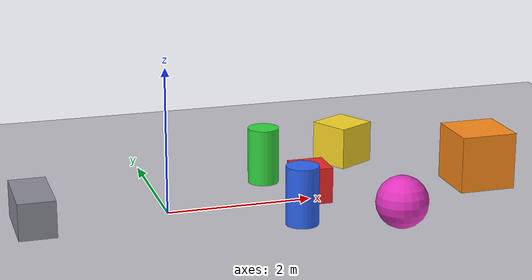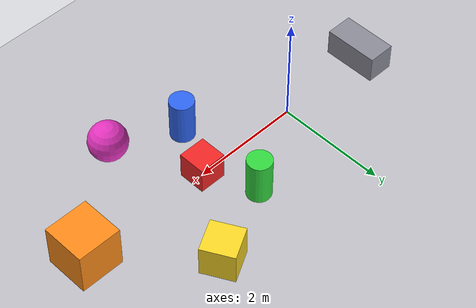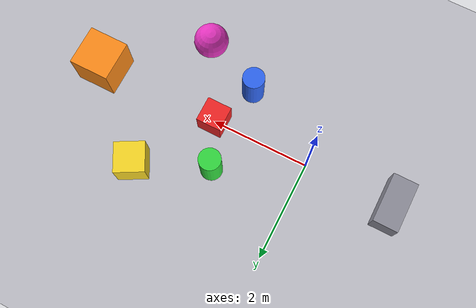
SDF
<?xml version="1.0"?>
<sdf version="1.10">
  <world name="camera_world">

    <physics name="1ms" type="ignored">
      <max_step_size>0.001</max_step_size>
      <real_time_factor>0.0</real_time_factor>
    </physics>

    <plugin filename="gz-sim-physics-system"
            name="gz::sim::systems::Physics"/>
    <plugin filename="gz-sim-user-commands-system"
            name="gz::sim::systems::UserCommands"/>
    <plugin filename="gz-sim-scene-broadcaster-system"
            name="gz::sim::systems::SceneBroadcaster"/>
    <!-- The Sensors system is what makes the camera (and lidar) actually fire -->
    <plugin filename="gz-sim-sensors-system"
            name="gz::sim::systems::Sensors">
      <render_engine>ogre2</render_engine>
    </plugin>

    <light type="directional" name="sun">
      <cast_shadows>true</cast_shadows>
      <pose>0 0 10 0 0 0</pose>
      <diffuse>0.95 0.95 0.95 1</diffuse>
      <specular>0.25 0.25 0.25 1</specular>
      <attenuation>
        <range>1000</range>
        <constant>0.9</constant>
        <linear>0.01</linear>
        <quadratic>0.001</quadratic>
      </attenuation>
      <direction>-0.5 0.1 -0.9</direction>
    </light>

    <!-- Ground plane -->
    <model name="ground_plane">
      <static>true</static>
      <link name="link">
        <collision name="collision">
          <geometry>
            <plane>
              <normal>0 0 1</normal>
              <size>100 100</size>
            </plane>
          </geometry>
        </collision>
        <visual name="visual">
          <geometry>
            <plane>
              <normal>0 0 1</normal>
              <size>100 100</size>
            </plane>
          </geometry>
          <material>
            <ambient>0.75 0.75 0.78 1</ambient>
            <diffuse>0.75 0.75 0.78 1</diffuse>
          </material>
        </visual>
      </link>
    </model>

    <!-- ============== Colourful objects in front of the robot ============== -->
    <!-- Bright primary colours so the camera image is unmistakable in RViz   -->

    <model name="red_box">
      <static>true</static>
      <pose>2.0 0.0 0.25 0 0 0</pose>
      <link name="link">
        <collision name="c">
          <geometry><box><size>0.5 0.5 0.5</size></box></geometry>
        </collision>
        <visual name="v">
          <geometry><box><size>0.5 0.5 0.5</size></box></geometry>
          <material>
            <ambient>0.95 0.15 0.15 1</ambient>
            <diffuse>0.95 0.15 0.15 1</diffuse>
            <specular>0.1 0.1 0.1 1</specular>
          </material>
        </visual>
      </link>
    </model>

    <model name="green_cylinder">
      <static>true</static>
      <pose>1.6 0.9 0.4 0 0 0</pose>
      <link name="link">
        <collision name="c">
          <geometry><cylinder><radius>0.22</radius><length>0.8</length></cylinder></geometry>
        </collision>
        <visual name="v">
          <geometry><cylinder><radius>0.22</radius><length>0.8</length></cylinder></geometry>
          <material>
            <ambient>0.20 0.85 0.25 1</ambient>
            <diffuse>0.20 0.85 0.25 1</diffuse>
          </material>
        </visual>
      </link>
    </model>

    <model name="blue_cylinder">
      <static>true</static>
      <pose>1.6 -0.9 0.4 0 0 0</pose>
      <link name="link">
        <collision name="c">
          <geometry><cylinder><radius>0.22</radius><length>0.8</length></cylinder></geometry>
        </collision>
        <visual name="v">
          <geometry><cylinder><radius>0.22</radius><length>0.8</length></cylinder></geometry>
          <material>
            <ambient>0.18 0.40 0.95 1</ambient>
            <diffuse>0.18 0.40 0.95 1</diffuse>
          </material>
        </visual>
      </link>
    </model>

    <model name="yellow_box">
      <static>true</static>
      <pose>3.0 1.5 0.3 0 0 0.5</pose>
      <link name="link">
        <collision name="c">
          <geometry><box><size>0.6 0.6 0.6</size></box></geometry>
        </collision>
        <visual name="v">
          <geometry><box><size>0.6 0.6 0.6</size></box></geometry>
          <material>
            <ambient>0.98 0.85 0.15 1</ambient>
            <diffuse>0.98 0.85 0.15 1</diffuse>
          </material>
        </visual>
      </link>
    </model>

    <model name="magenta_sphere">
      <static>true</static>
      <pose>2.8 -1.4 0.35 0 0 0</pose>
      <link name="link">
        <collision name="c">
          <geometry><sphere><radius>0.35</radius></sphere></geometry>
        </collision>
        <visual name="v">
          <geometry><sphere><radius>0.35</radius></sphere></geometry>
          <material>
            <ambient>0.90 0.20 0.75 1</ambient>
            <diffuse>0.90 0.20 0.75 1</diffuse>
          </material>
        </visual>
      </link>
    </model>

    <model name="orange_box">
      <static>true</static>
      <pose>4.5 0.0 0.4 0 0 0</pose>
      <link name="link">
        <collision name="c">
          <geometry><box><size>0.8 0.8 0.8</size></box></geometry>
        </collision>
        <visual name="v">
          <geometry><box><size>0.8 0.8 0.8</size></box></geometry>
          <material>
            <ambient>1.0 0.55 0.10 1</ambient>
            <diffuse>1.0 0.55 0.10 1</diffuse>
          </material>
        </visual>
      </link>
    </model>
    <!-- A couple of obstacles behind so the lidar still has a 360 view -->
    <model name="grey_box_back">
      <static>true</static>
      <pose>-1.8 0.0 0.25 0 0 0</pose>
      <link name="link">
        <collision name="c">
          <geometry><box><size>0.5 1.0 0.5</size></box></geometry>
        </collision>
        <visual name="v">
          <geometry><box><size>0.5 1.0 0.5</size></box></geometry>
          <material>
            <ambient>0.55 0.55 0.60 1</ambient>
            <diffuse>0.55 0.55 0.60 1</diffuse>
          </material>
        </visual>
      </link>
    </model>

  </world>
</sdf>
